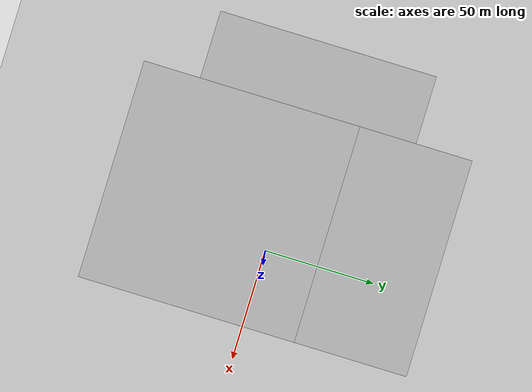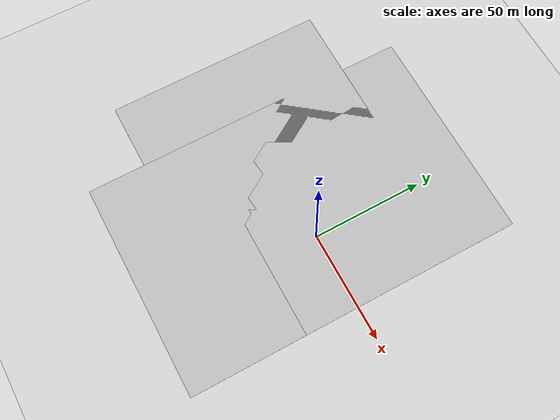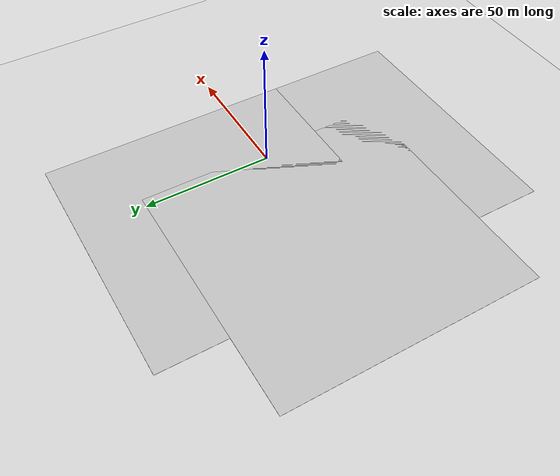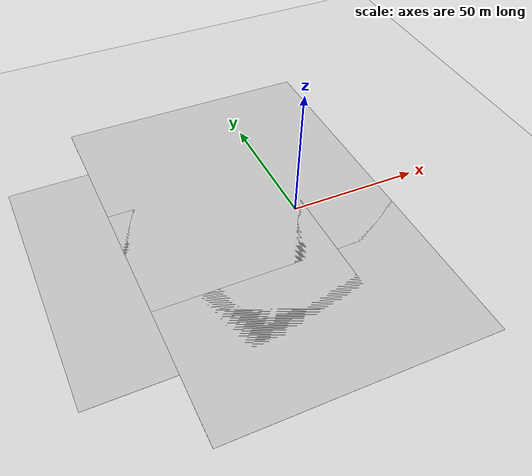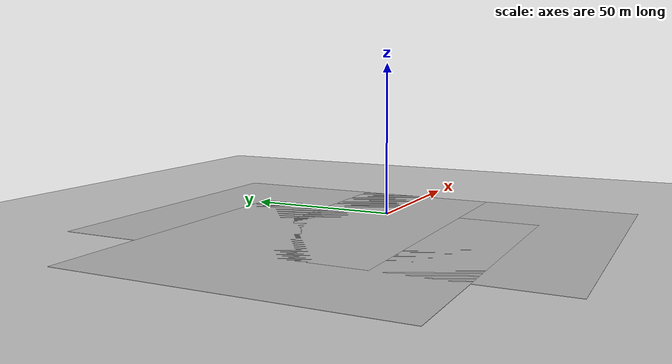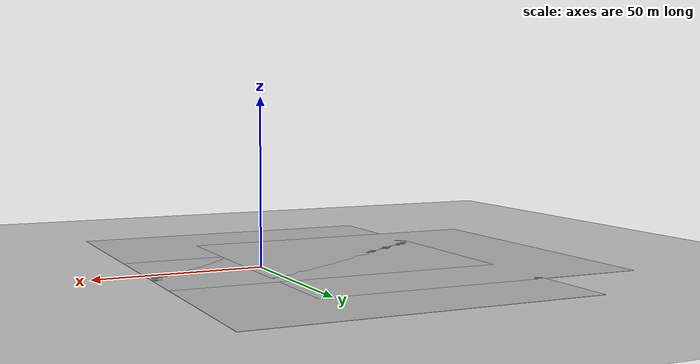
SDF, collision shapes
<?xml version="1.0"?>
<sdf version="1.6">
    <model name="course">
        <static>1</static>
        <link name="link">
            <pose>0 0 0 0 0 0</pose>
                <collision name="collision">
                    <geometry>
                        <plane>
                            <normal>0 0 1</normal>
                            <size>100 100</size>
                        </plane>
                    </geometry>
                    <surface>
                        <friction>
                            <ode>
                                <mu>100</mu>
                                <mu2>50</mu2>
                            </ode>
                        </friction>
                    </surface>
                </collision>
                <visual name="visual">
                    <geometry>
                        <mesh>
                            <uri>untitled.dae</uri>
                        </mesh>
                    </geometry>
                </visual>
            </link>
        <link name="link2">
            <pose>-15 -26 -.01 0 0 0</pose>
                <collision name="collision">
                    <geometry>
                        <plane>
                            <normal>0 0 1</normal>
                            <size>100 100</size>
                        </plane>
                    </geometry>
                    <surface>
                        <friction>
                            <ode>
                                <mu>100</mu>
                                <mu2>50</mu2>
                            </ode>
                        </friction>
                    </surface>
                </collision>
                <visual name="visual">
                    <geometry>
                        <mesh>
                            <uri>untitled.dae</uri>
                        </mesh>
                    </geometry>
                </visual>
            </link>
            <link name="link3">
            <pose>-15 26 -.01 0 0 0</pose>
                <collision name="collision">
                    <geometry>
                        <plane>
                            <normal>0 0 1</normal>
                            <size>100 100</size>
                        </plane>
                    </geometry>
                    <surface>
                        <friction>
                            <ode>
                                <mu>100</mu>
                                <mu2>50</mu2>
                            </ode>
                        </friction>
                    </surface>
                </collision>
                <visual name="visual">
                    <geometry>
                        <mesh>
                            <uri>untitled.dae</uri>
                        </mesh>
                    </geometry>
                </visual>
            </link>
            <link name="link4">
            <pose>-46 0 -.01 0 0 0</pose>
                <collision name="collision">
                    <geometry>
                        <plane>
                            <normal>0 0 1</normal>
                            <size>100 100</size>
                        </plane>
                    </geometry>
                    <surface>
                        <friction>
                            <ode>
                                <mu>100</mu>
                                <mu2>50</mu2>
                            </ode>
                        </friction>
                    </surface>
                </collision>
                <visual name="visual">
                    <geometry>
                        <mesh>
                            <uri>untitled.dae</uri>
                        </mesh>
                    </geometry>
                </visual>
            </link>
    </model>
</sdf>
